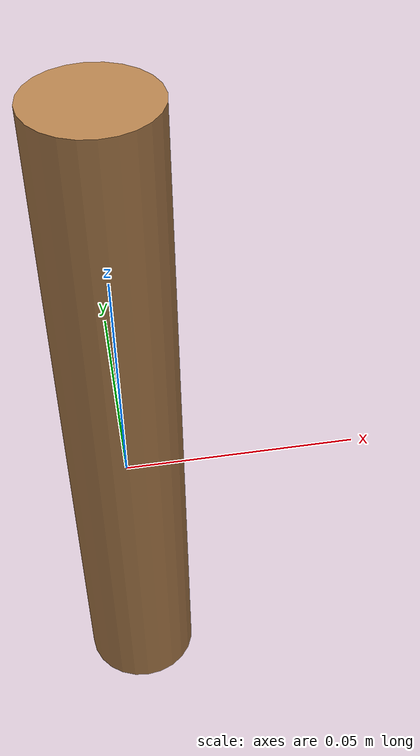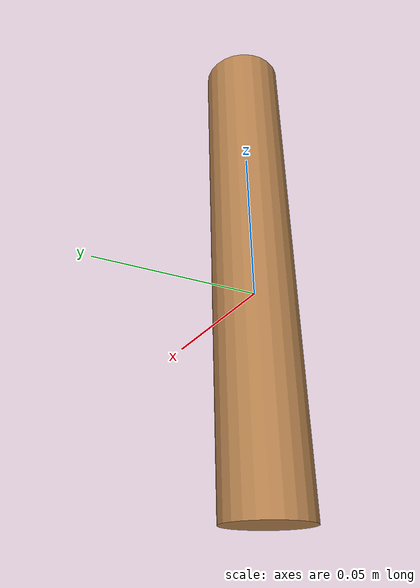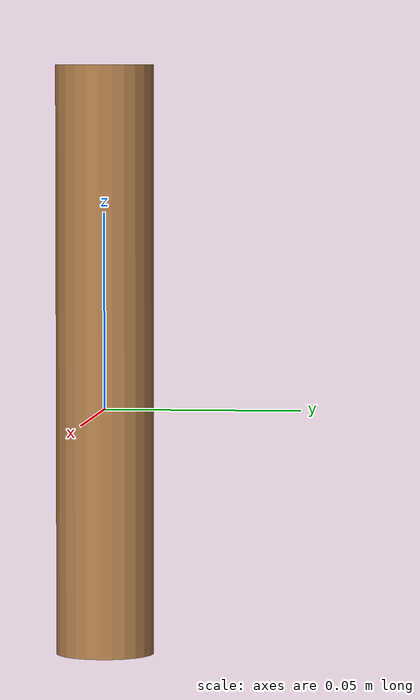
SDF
<?xml version="1.0" ?>
<sdf version="1.5">
  <model name="wood_cylinder_1_25cm">
    <link name="link">
      <pose>0 0 0.0125 0 0 0</pose>
      <inertial>
        <mass>0.0073</mass>
        <inertia>
          <ixx>7.604166666666669e-07</ixx>
          <ixy>0</ixy>
          <ixz>0</ixz>
          <iyy>7.604166666666669e-07</iyy>
          <iyz>0</iyz>
          <izz>7.604166666666669e-07</izz>
        </inertia>
      </inertial>

      <collision name="collision">
        <geometry>
          <cylinder>
            <radius>0.0125</radius>
            <length>0.15</length>
          </cylinder>
        </geometry>
        <surface>
          <contact>
            <!-- Red Pine coefficients for longitudinal axis of the wood
                 according to:
                 http://www.fpl.fs.fed.us/documnts/fplgtr/fplgtr113/ch04.pdf -->
            <poissons_ratio>0.347</poissons_ratio>
            <elastic_modulus>8.8e+09</elastic_modulus>
            <ode>
              <kp>100000</kp>
              <kd>100</kd>
              <max_vel>100.0</max_vel>
              <min_depth>0.001</min_depth>
            </ode>
          </contact>
          <friction>
            <torsional>
              <coefficient>1.0</coefficient>
              <use_patch_radius>0</use_patch_radius>
              <surface_radius>0.01</surface_radius>
            </torsional>
          </friction>
        </surface>
      </collision>

      <visual name="visual">
        <geometry>
          <cylinder>
            <radius>0.0125</radius>
            <length>0.15</length>
          </cylinder>
        </geometry>
        <material>
          <script>
            <uri>file://media/materials/scripts/gazebo.material</uri>
            <name>Gazebo/Wood</name>
          </script>
        </material>
      </visual>

    </link>
  </model>
</sdf>
